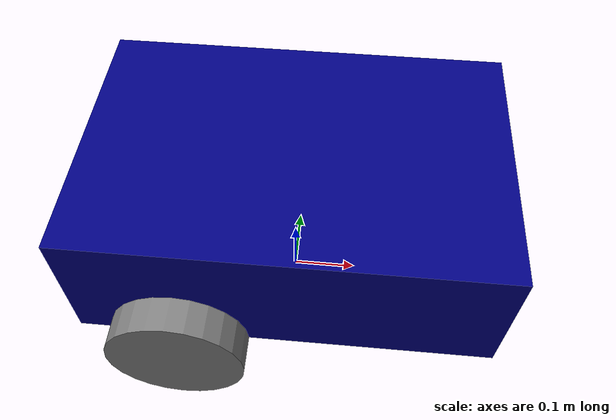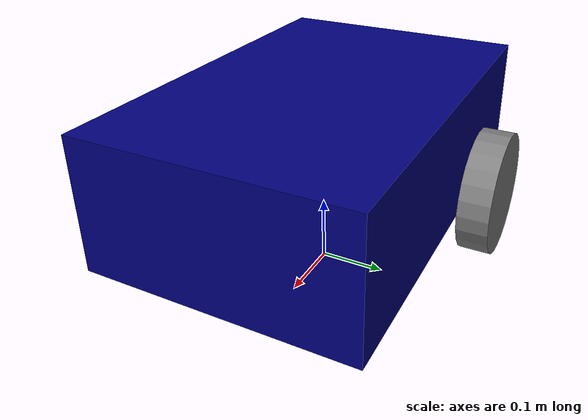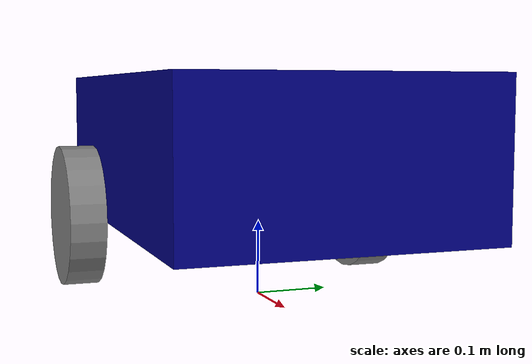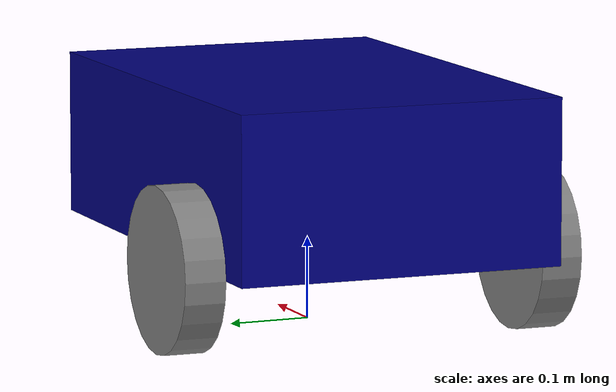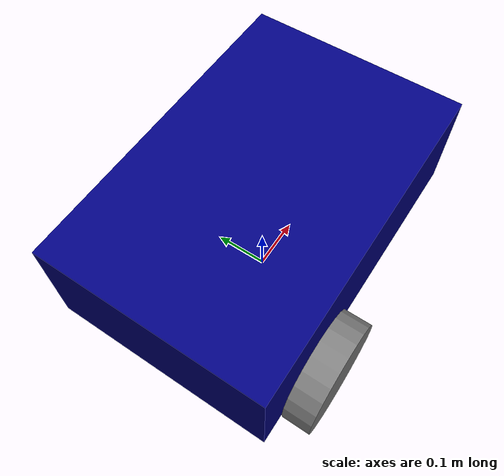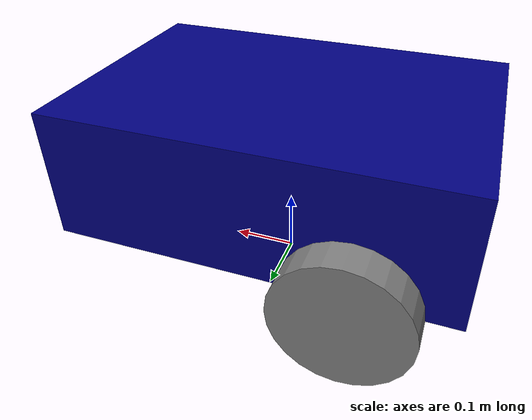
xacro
<?xml version="1.0"?>
<robot name="my_robot" xmlns:xacro="http://www.ros.org/wiki/xacro">

    <xacro:property name="base_length" value="0.6"/>
    <xacro:property name="base_width" value="0.4"/>
    <xacro:property name="base_heigth" value="0.2"/>
    <xacro:property name="wheel_radius" value="0.1"/>
    <xacro:property name="wheel_length" value="0.05"/>

    <material name="blue">
        <color rgba="0 0 0.5 1" />
    </material>

    <material name="grey">
        <color rgba="0.5 0.5 0.5 1" />
    </material>

    <link name="base_footprint" />

    <link name="base_link">
        <visual>
            <geometry>
                <box size="${base_length} ${base_width} ${base_heigth}" />
            </geometry>
            <origin xyz="0 0 ${base_heigth / 2.0}" rpy="0 0 0" />
            <material name="blue" />
        </visual>
    </link>

    <xacro:macro name="wheel_link" params="prefix">
        <link name="${prefix}_wheel_link">
            <visual>
                <geometry>
                    <cylinder radius="${wheel_radius}" length="${wheel_length}" />
                </geometry>
                <origin xyz="0 0 0" rpy="${pi / 2.0} 0 0" />
                <material name="grey" />
            </visual>
        </link>
    </xacro:macro>

    <xacro:wheel_link prefix="right" />
    <xacro:wheel_link prefix="left" />

    <link name="caster_wheel_link">
        <visual>
            <geometry>
                <sphere radius="${wheel_radius/ 2.0}" />
            </geometry>
            <origin xyz="0 0 0" rpy="0 0 0" />
            <material name="grey" />
        </visual>
    </link>

    <joint name="base_joint" type="fixed">
        <parent link="base_footprint" />
        <child link="base_link" />
        <origin xyz="0 0 ${wheel_radius}" rpy="0 0 0"/>
    </joint>

    <joint name="base_right_wheel_joint" type="continuous">
        <parent link="base_link" />
        <child link="right_wheel_link" />
        <origin xyz="${-base_length / 4.0} ${-(base_width + wheel_length) / 2.0} 0" rpy="0 0 0" />
        <axis xyz="0 1 0" />
    </joint>

    <joint name="base_left_wheel_joint" type="continuous">
        <parent link="base_link" />
        <child link="left_wheel_link" />
        <origin xyz="${-base_length / 4.0} ${(base_width + wheel_length) / 2.0} 0" rpy="0 0 0" />
        <axis xyz="0 1 0" />
    </joint>

    <joint name="base_caster_wheel_joint" type="fixed">
        <parent link="base_link" />
        <child link="caster_wheel_link" />
        <origin xyz="${base_length / 3.0} 0 ${wheel_radius / 2.0}" rpy="0 0 0" />
    </joint>

</robot>
